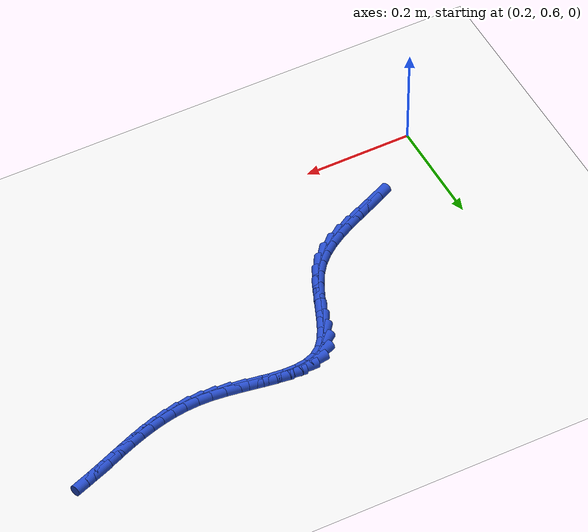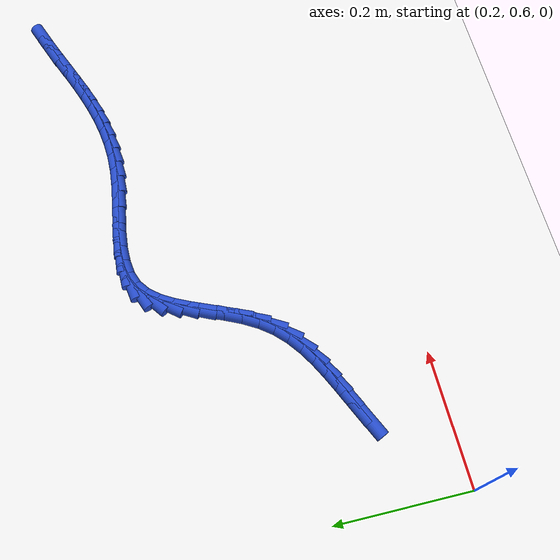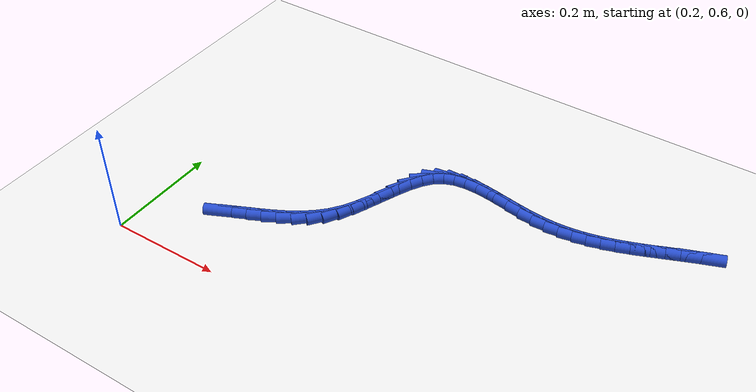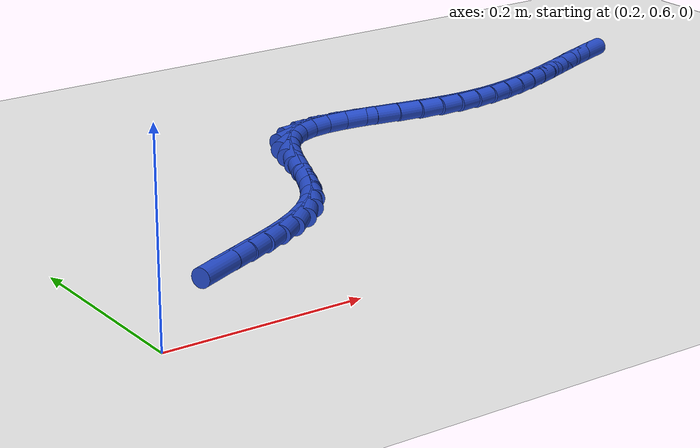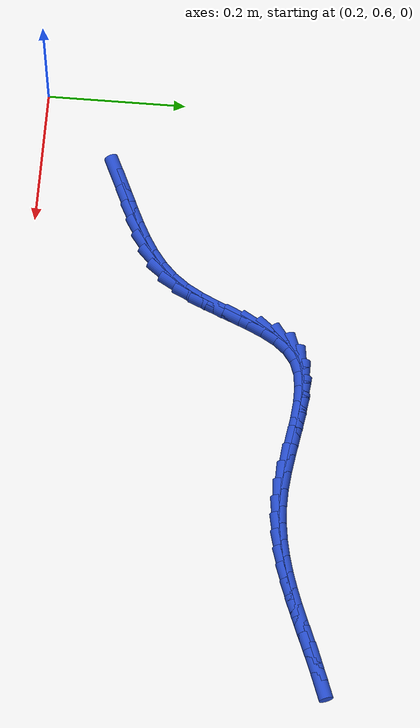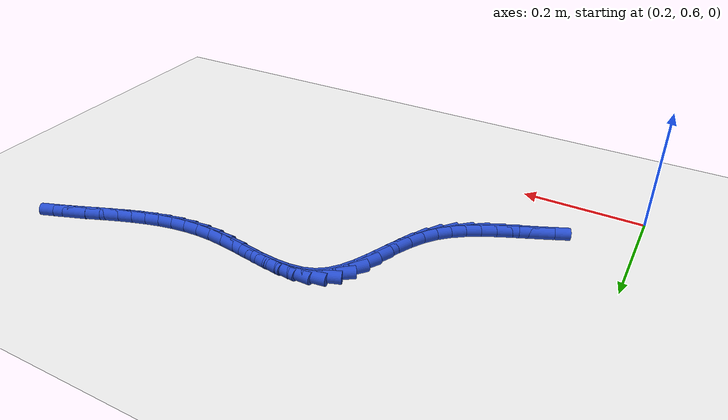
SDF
<sdf version="1.6">
 <world name="default">
  <model name="ground_plane">
   <static>1</static>
   <link name="link">
    <collision name="collision">
     <geometry><plane><normal>0 0 1</normal><size>100 100</size></plane></geometry>
     <surface><friction><ode><mu>100</mu><mu2>50</mu2></ode></friction></surface>
    </collision>
    <visual name="visual">
     <cast_shadows>0</cast_shadows>
     <geometry><plane><normal>0 0 1</normal><size>100 100</size></plane></geometry>
     <material>
      <script><uri>file://media/materials/scripts/gazebo.material</uri><name>Gazebo/WhiteGlow</name></script>
     </material>
    </visual>
   </link>
  </model>
  <model name="line">
   <link name="link_34">
    <pose>0.3333539821349543 0.7167745605204731 0.01 0 1.57 0.4316970277547114</pose>
    <collision name="collision">
     <geometry><cylinder><radius>0.01</radius><length>0.08</length></cylinder></geometry>
    </collision>
    <visual name="visual">
     <material>
      <script><name>Gazebo/Blue</name><uri>file://media/materials/scripts/gazebo.material</uri></script>
     </material>
     <geometry><cylinder><radius>0.01</radius><length>0.08</length></cylinder></geometry>
    </visual>
   </link>
   <link name="link_35">
    <pose>0.355789439483802 0.7271100506057604 0.01 0 1.57 0.4225814623082304</pose>
    <collision name="collision">
     <geometry><cylinder><radius>0.01</radius><length>0.08</length></cylinder></geometry>
    </collision>
    <visual name="visual">
     <material>
      <script><name>Gazebo/Blue</name><uri>file://media/materials/scripts/gazebo.material</uri></script>
     </material>
     <geometry><cylinder><radius>0.01</radius><length>0.08</length></cylinder></geometry>
    </visual>
   </link>
   <link name="link_36">
    <pose>0.3785638837898013 0.7373510896903691 0.01 0 1.57 0.4387110607294869</pose>
    <collision name="collision">
     <geometry><cylinder><radius>0.01</radius><length>0.08</length></cylinder></geometry>
    </collision>
    <visual name="visual">
     <material>
      <script><name>Gazebo/Blue</name><uri>file://media/materials/scripts/gazebo.material</uri></script>
     </material>
     <geometry><cylinder><radius>0.01</radius><length>0.08</length></cylinder></geometry>
    </visual>
   </link>
   <link name="link_37">
    <pose>0.40121250149675247 0.7479779766892014 0.01 0 1.57 0.48033562951393916</pose>
    <collision name="collision">
     <geometry><cylinder><radius>0.01</radius><length>0.08</length></cylinder></geometry>
    </collision>
    <visual name="visual">
     <material>
      <script><name>Gazebo/Blue</name><uri>file://media/materials/scripts/gazebo.material</uri></script>
     </material>
     <geometry><cylinder><radius>0.01</radius><length>0.08</length></cylinder></geometry>
    </visual>
   </link>
   <link name="link_38">
    <pose>0.4232704790484553 0.7594710105171598 0.01 0 1.57 0.5487089889923414</pose>
    <collision name="collision">
     <geometry><cylinder><radius>0.01</radius><length>0.08</length></cylinder></geometry>
    </collision>
    <visual name="visual">
     <material>
      <script><name>Gazebo/Blue</name><uri>file://media/materials/scripts/gazebo.material</uri></script>
     </material>
     <geometry><cylinder><radius>0.01</radius><length>0.08</length></cylinder></geometry>
    </visual>
   </link>
   <link name="link_39">
    <pose>0.4442730028887098 0.7723104900891468 0.01 0 1.57 0.6452900950118969</pose>
    <collision name="collision">
     <geometry><cylinder><radius>0.01</radius><length>0.08</length></cylinder></geometry>
    </collision>
    <visual name="visual">
     <material>
      <script><name>Gazebo/Blue</name><uri>file://media/materials/scripts/gazebo.material</uri></script>
     </material>
     <geometry><cylinder><radius>0.01</radius><length>0.08</length></cylinder></geometry>
    </visual>
   </link>
   <link name="link_40">
    <pose>0.4637552594613158 0.7869767143200641 0.01 0 1.57 0.7702005751366988</pose>
    <collision name="collision">
     <geometry><cylinder><radius>0.01</radius><length>0.08</length></cylinder></geometry>
    </collision>
    <visual name="visual">
     <material>
      <script><name>Gazebo/Blue</name><uri>file://media/materials/scripts/gazebo.material</uri></script>
     </material>
     <geometry><cylinder><radius>0.01</radius><length>0.08</length></cylinder></geometry>
    </visual>
   </link>
   <link name="link_41">
    <pose>0.4812524352100734 0.8039499821248146 0.01 0 1.57 0.9185451669088889</pose>
    <collision name="collision">
     <geometry><cylinder><radius>0.01</radius><length>0.08</length></cylinder></geometry>
    </collision>
    <visual name="visual">
     <material>
      <script><name>Gazebo/Blue</name><uri>file://media/materials/scripts/gazebo.material</uri></script>
     </material>
     <geometry><cylinder><radius>0.01</radius><length>0.08</length></cylinder></geometry>
    </visual>
   </link>
   <link name="link_42">
    <pose>0.4963226224784224 0.8236814887453041 0.01 0 1.57 1.050078902577583</pose>
    <collision name="collision">
     <geometry><cylinder><radius>0.01</radius><length>0.08</length></cylinder></geometry>
    </collision>
    <visual name="visual">
     <material>
      <script><name>Gazebo/Blue</name><uri>file://media/materials/scripts/gazebo.material</uri></script>
     </material>
     <geometry><cylinder><radius>0.01</radius><length>0.08</length></cylinder></geometry>
    </visual>
   </link>
   <link name="link_43">
    <pose>0.5090767464459953 0.845920013611824 0.01 0 1.57 1.133389874532252</pose>
    <collision name="collision">
     <geometry><cylinder><radius>0.01</radius><length>0.08</length></cylinder></geometry>
    </collision>
    <visual name="visual">
     <material>
      <script><name>Gazebo/Blue</name><uri>file://media/materials/scripts/gazebo.material</uri></script>
     </material>
     <geometry><cylinder><radius>0.01</radius><length>0.08</length></cylinder></geometry>
    </visual>
   </link>
   <link name="link_44">
    <pose>0.5201934057085449 0.8696930642670153 0.01 0 1.57 1.1739821972694273</pose>
    <collision name="collision">
     <geometry><cylinder><radius>0.01</radius><length>0.08</length></cylinder></geometry>
    </collision>
    <visual name="visual">
     <material>
      <script><name>Gazebo/Blue</name><uri>file://media/materials/scripts/gazebo.material</uri></script>
     </material>
     <geometry><cylinder><radius>0.01</radius><length>0.08</length></cylinder></geometry>
    </visual>
   </link>
   <link name="link_45">
    <pose>0.5303770735304086 0.8939952725356803 0.01 0 1.57 1.1750167672954164</pose>
    <collision name="collision">
     <geometry><cylinder><radius>0.01</radius><length>0.08</length></cylinder></geometry>
    </collision>
    <visual name="visual">
     <material>
      <script><name>Gazebo/Blue</name><uri>file://media/materials/scripts/gazebo.material</uri></script>
     </material>
     <geometry><cylinder><radius>0.01</radius><length>0.08</length></cylinder></geometry>
    </visual>
   </link>
   <link name="link_46">
    <pose>0.5403322231759249 0.9178212702426218 0.01 0 1.57 1.1340328602919592</pose>
    <collision name="collision">
     <geometry><cylinder><radius>0.01</radius><length>0.08</length></cylinder></geometry>
    </collision>
    <visual name="visual">
     <material>
      <script><name>Gazebo/Blue</name><uri>file://media/materials/scripts/gazebo.material</uri></script>
     </material>
     <geometry><cylinder><radius>0.01</radius><length>0.08</length></cylinder></geometry>
    </visual>
   </link>
   <link name="link_47">
    <pose>0.5507633279094314 0.9401656892126415 0.01 0 1.57 1.041670177382802</pose>
    <collision name="collision">
     <geometry><cylinder><radius>0.01</radius><length>0.08</length></cylinder></geometry>
    </collision>
    <visual name="visual">
     <material>
      <script><name>Gazebo/Blue</name><uri>file://media/materials/scripts/gazebo.material</uri></script>
     </material>
     <geometry><cylinder><radius>0.01</radius><length>0.08</length></cylinder></geometry>
    </visual>
   </link>
   <link name="link_48">
    <pose>0.5623748609952662 0.9600231612705427 0.01 0 1.57 0.8811715492622904</pose>
    <collision name="collision">
     <geometry><cylinder><radius>0.01</radius><length>0.08</length></cylinder></geometry>
    </collision>
    <visual name="visual">
     <material>
      <script><name>Gazebo/Blue</name><uri>file://media/materials/scripts/gazebo.material</uri></script>
     </material>
     <geometry><cylinder><radius>0.01</radius><length>0.08</length></cylinder></geometry>
    </visual>
   </link>
   <link name="link_49">
    <pose>0.575871295697767 0.9763883182411265 0.01 0 1.57 0.6360557288784366</pose>
    <collision name="collision">
     <geometry><cylinder><radius>0.01</radius><length>0.08</length></cylinder></geometry>
    </collision>
    <visual name="visual">
     <material>
      <script><name>Gazebo/Blue</name><uri>file://media/materials/scripts/gazebo.material</uri></script>
     </material>
     <geometry><cylinder><radius>0.01</radius><length>0.08</length></cylinder></geometry>
    </visual>
   </link>
   <link name="link_50">
    <pose>0.5919525045512037 0.9882631810851074 0.01 0 1.57 0.35495236998822727</pose>
    <collision name="collision">
     <geometry><cylinder><radius>0.01</radius><length>0.08</length></cylinder></geometry>
    </collision>
    <visual name="visual">
     <material>
      <script><name>Gazebo/Blue</name><uri>file://media/materials/scripts/gazebo.material</uri></script>
     </material>
     <geometry><cylinder><radius>0.01</radius><length>0.08</length></cylinder></geometry>
    </visual>
   </link>
   <link name="link_51">
    <pose>0.6109180104026382 0.9952927639853123 0.01 0 1.57 0.13724463481481647</pose>
    <collision name="collision">
     <geometry><cylinder><radius>0.01</radius><length>0.08</length></cylinder></geometry>
    </collision>
    <visual name="visual">
     <material>
      <script><name>Gazebo/Blue</name><uri>file://media/materials/scripts/gazebo.material</uri></script>
     </material>
     <geometry><cylinder><radius>0.01</radius><length>0.08</length></cylinder></geometry>
    </visual>
   </link>
   <link name="link_52">
    <pose>0.6323622586606645 0.9982544911862857 0.01 0 1.57 -0.009105523998116686</pose>
    <collision name="collision">
     <geometry><cylinder><radius>0.01</radius><length>0.08</length></cylinder></geometry>
    </collision>
    <visual name="visual">
     <material>
      <script><name>Gazebo/Blue</name><uri>file://media/materials/scripts/gazebo.material</uri></script>
     </material>
     <geometry><cylinder><radius>0.01</radius><length>0.08</length></cylinder></geometry>
    </visual>
   </link>
   <link name="link_53">
    <pose>0.6558079591808439 0.998040999897286 0.01 0 1.57 -0.09963242278142019</pose>
    <collision name="collision">
     <geometry><cylinder><radius>0.01</radius><length>0.08</length></cylinder></geometry>
    </collision>
    <visual name="visual">
     <material>
      <script><name>Gazebo/Blue</name><uri>file://media/materials/scripts/gazebo.material</uri></script>
     </material>
     <geometry><cylinder><radius>0.01</radius><length>0.08</length></cylinder></geometry>
    </visual>
   </link>
   <link name="link_54">
    <pose>0.6807778218187377 0.9955449273275712 0.01 0 1.57 -0.14826988094005367</pose>
    <collision name="collision">
     <geometry><cylinder><radius>0.01</radius><length>0.08</length></cylinder></geometry>
    </collision>
    <visual name="visual">
     <material>
      <script><name>Gazebo/Blue</name><uri>file://media/materials/scripts/gazebo.material</uri></script>
     </material>
     <geometry><cylinder><radius>0.01</radius><length>0.08</length></cylinder></geometry>
    </visual>
   </link>
   <link name="link_55">
    <pose>0.7067945564299073 0.9916589106863991 0.01 0 1.57 -0.16340143523661366</pose>
    <collision name="collision">
     <geometry><cylinder><radius>0.01</radius><length>0.08</length></cylinder></geometry>
    </collision>
    <visual name="visual">
     <material>
      <script><name>Gazebo/Blue</name><uri>file://media/materials/scripts/gazebo.material</uri></script>
     </material>
     <geometry><cylinder><radius>0.01</radius><length>0.08</length></cylinder></geometry>
    </visual>
   </link>
   <link name="link_56">
    <pose>0.7333808728699132 0.9872755871830278 0.01 0 1.57 -0.14838409437230246</pose>
    <collision name="collision">
     <geometry><cylinder><radius>0.01</radius><length>0.08</length></cylinder></geometry>
    </collision>
    <visual name="visual">
     <material>
      <script><name>Gazebo/Blue</name><uri>file://media/materials/scripts/gazebo.material</uri></script>
     </material>
     <geometry><cylinder><radius>0.01</radius><length>0.08</length></cylinder></geometry>
    </visual>
   </link>
   <link name="link_57">
    <pose>0.7600594809943166 0.983287594026715 0.01 0 1.57 -0.1023288504444193</pose>
    <collision name="collision">
     <geometry><cylinder><radius>0.01</radius><length>0.08</length></cylinder></geometry>
    </collision>
    <visual name="visual">
     <material>
      <script><name>Gazebo/Blue</name><uri>file://media/materials/scripts/gazebo.material</uri></script>
     </material>
     <geometry><cylinder><radius>0.01</radius><length>0.08</length></cylinder></geometry>
    </visual>
   </link>
   <link name="link_58">
    <pose>0.786353090658679 0.9805875684267186 0.01 0 1.57 -0.025306620141647373</pose>
    <collision name="collision">
     <geometry><cylinder><radius>0.01</radius><length>0.08</length></cylinder></geometry>
    </collision>
    <visual name="visual">
     <material>
      <script><name>Gazebo/Blue</name><uri>file://media/materials/scripts/gazebo.material</uri></script>
     </material>
     <geometry><cylinder><radius>0.01</radius><length>0.08</length></cylinder></geometry>
    </visual>
   </link>
   <link name="link_59">
    <pose>0.8118502905985796 0.9799421826935569 0.01 0 1.57 0.058012595947376656</pose>
    <collision name="collision">
     <geometry><cylinder><radius>0.01</radius><length>0.08</length></cylinder></geometry>
    </collision>
    <visual name="visual">
     <material>
      <script><name>Gazebo/Blue</name><uri>file://media/materials/scripts/gazebo.material</uri></script>
     </material>
     <geometry><cylinder><radius>0.01</radius><length>0.08</length></cylinder></geometry>
    </visual>
   </link>
   <link name="link_60">
    <pose>0.8365280944329405 0.9813754143456705 0.01 0 1.57 0.13532036666044464</pose>
    <collision name="collision">
     <geometry><cylinder><radius>0.01</radius><length>0.08</length></cylinder></geometry>
    </collision>
    <visual name="visual">
     <material>
      <script><name>Gazebo/Blue</name><uri>file://media/materials/scripts/gazebo.material</uri></script>
     </material>
     <geometry><cylinder><radius>0.01</radius><length>0.08</length></cylinder></geometry>
    </visual>
   </link>
   <link name="link_61">
    <pose>0.8605053832229752 0.9846399807040325 0.01 0 1.57 0.2043333689495089</pose>
    <collision name="collision">
     <geometry><cylinder><radius>0.01</radius><length>0.08</length></cylinder></geometry>
    </collision>
    <visual name="visual">
     <material>
      <script><name>Gazebo/Blue</name><uri>file://media/materials/scripts/gazebo.material</uri></script>
     </material>
     <geometry><cylinder><radius>0.01</radius><length>0.08</length></cylinder></geometry>
    </visual>
   </link>
   <link name="link_62">
    <pose>0.8839012470533677 0.9894881994225249 0.01 0 1.57 0.26339219855944657</pose>
    <collision name="collision">
     <geometry><cylinder><radius>0.01</radius><length>0.08</length></cylinder></geometry>
    </collision>
    <visual name="visual">
     <material>
      <script><name>Gazebo/Blue</name><uri>file://media/materials/scripts/gazebo.material</uri></script>
     </material>
     <geometry><cylinder><radius>0.01</radius><length>0.08</length></cylinder></geometry>
    </visual>
   </link>
   <link name="link_63">
    <pose>0.9068347760088034 0.99567238815503 0.01 0 1.57 0.3114521354325239</pose>
    <collision name="collision">
     <geometry><cylinder><radius>0.01</radius><length>0.08</length></cylinder></geometry>
    </collision>
    <visual name="visual">
     <material>
      <script><name>Gazebo/Blue</name><uri>file://media/materials/scripts/gazebo.material</uri></script>
     </material>
     <geometry><cylinder><radius>0.01</radius><length>0.08</length></cylinder></geometry>
    </visual>
   </link>
   <link name="link_64">
    <pose>0.9294250601739663 1.00294486455543 0.01 0 1.57 0.3479787777669362</pose>
    <collision name="collision">
     <geometry><cylinder><radius>0.01</radius><length>0.08</length></cylinder></geometry>
    </collision>
    <visual name="visual">
     <material>
      <script><name>Gazebo/Blue</name><uri>file://media/materials/scripts/gazebo.material</uri></script>
     </material>
     <geometry><cylinder><radius>0.01</radius><length>0.08</length></cylinder></geometry>
    </visual>
   </link>
   <link name="link_65">
    <pose>0.9517911896335411 1.0110579462776066 0.01 0 1.57 0.37279889502759167</pose>
    <collision name="collision">
     <geometry><cylinder><radius>0.01</radius><length>0.08</length></cylinder></geometry>
    </collision>
    <visual name="visual">
     <material>
      <script><name>Gazebo/Blue</name><uri>file://media/materials/scripts/gazebo.material</uri></script>
     </material>
     <geometry><cylinder><radius>0.01</radius><length>0.08</length></cylinder></geometry>
    </visual>
   </link>
   <link name="link_66">
    <pose>0.974052254472213 1.0197639509754426 0.01 0 1.57 0.3859593447923466</pose>
    <collision name="collision">
     <geometry><cylinder><radius>0.01</radius><length>0.08</length></cylinder></geometry>
    </collision>
    <visual name="visual">
     <material>
      <script><name>Gazebo/Blue</name><uri>file://media/materials/scripts/gazebo.material</uri></script>
     </material>
     <geometry><cylinder><radius>0.01</radius><length>0.08</length></cylinder></geometry>
    </visual>
   </link>
   <link name="link_67">
    <pose>0.9963273447746659 1.0288151963028198 0.01 0 1.57 0.38762315166648637</pose>
    <collision name="collision">
     <geometry><cylinder><radius>0.01</radius><length>0.08</length></cylinder></geometry>
    </collision>
    <visual name="visual">
     <material>
      <script><name>Gazebo/Blue</name><uri>file://media/materials/scripts/gazebo.material</uri></script>
     </material>
     <geometry><cylinder><radius>0.01</radius><length>0.08</length></cylinder></geometry>
    </visual>
   </link>
   <link name="link_68">
    <pose>1.0187355506255846 1.0379639999136199 0.01 0 1.57 0.37801265278685797</pose>
    <collision name="collision">
     <geometry><cylinder><radius>0.01</radius><length>0.08</length></cylinder></geometry>
    </collision>
    <visual name="visual">
     <material>
      <script><name>Gazebo/Blue</name><uri>file://media/materials/scripts/gazebo.material</uri></script>
     </material>
     <geometry><cylinder><radius>0.01</radius><length>0.08</length></cylinder></geometry>
    </visual>
   </link>
   <link name="link_69">
    <pose>1.0413959621096538 1.046962679461726 0.01 0 1.57 0.35739896019974593</pose>
    <collision name="collision">
     <geometry><cylinder><radius>0.01</radius><length>0.08</length></cylinder></geometry>
    </collision>
    <visual name="visual">
     <material>
      <script><name>Gazebo/Blue</name><uri>file://media/materials/scripts/gazebo.material</uri></script>
     </material>
     <geometry><cylinder><radius>0.01</radius><length>0.08</length></cylinder></geometry>
    </visual>
   </link>
  </model>
 </world>
</sdf>
